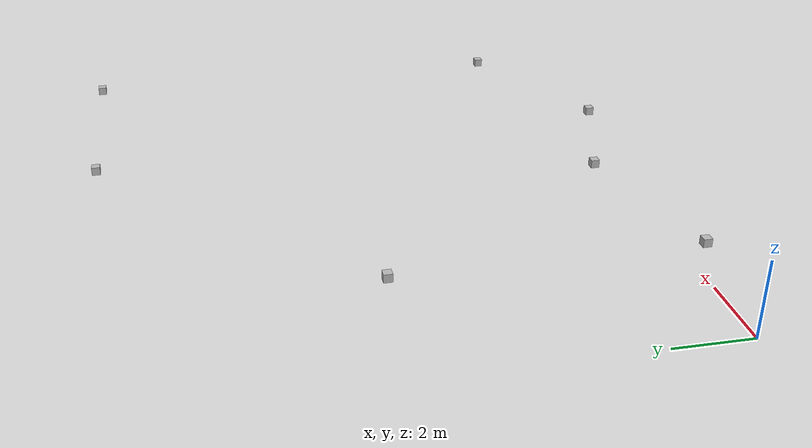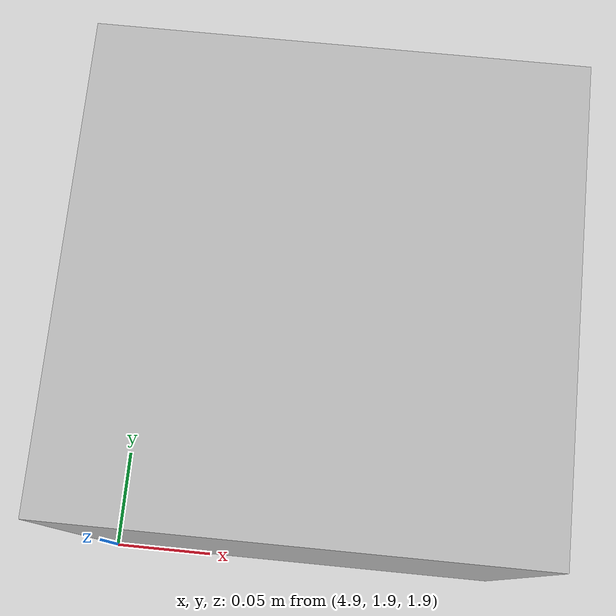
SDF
<sdf version="1.4">
 <world name="default">
  <scene><ambient>0.4 0.4 0.4 1</ambient><background>0.7 0.7 0.7 1</background><shadows>true</shadows></scene>
  <include><uri>model://sun</uri></include>
  <model name="uwb_anchor0">
   <pose>1 1 2 0 0 0</pose>
   <static>1</static>
   <link name="link">
    <visual name="visual"><geometry><box><size>0.2 0.2 0.2</size></box></geometry></visual>
   </link>
  </model>
  <model name="uwb_anchor1">
   <pose>1 8 2 0 0 0</pose>
   <static>1</static>
   <link name="link">
    <visual name="visual"><geometry><box><size>0.2 0.2 0.2</size></box></geometry></visual>
   </link>
  </model>
  <model name="uwb_anchor2">
   <pose>7 14 2 0 0 0</pose>
   <static>1</static>
   <link name="link">
    <visual name="visual"><geometry><box><size>0.2 0.2 0.2</size></box></geometry></visual>
   </link>
  </model>
  <model name="uwb_anchor3">
   <pose>12 14 2 0 0 0</pose>
   <static>1</static>
   <link name="link">
    <visual name="visual"><geometry><box><size>0.2 0.2 0.2</size></box></geometry></visual>
   </link>
  </model>
  <model name="uwb_anchor4">
   <pose>12 3 2 0 0 0</pose>
   <static>1</static>
   <link name="link">
    <visual name="visual"><geometry><box><size>0.2 0.2 0.2</size></box></geometry></visual>
   </link>
  </model>
  <model name="uwb_anchor5">
   <pose>8 1 2 0 0 0</pose>
   <static>1</static>
   <link name="link">
    <visual name="visual"><geometry><box><size>0.2 0.2 0.2</size></box></geometry></visual>
   </link>
  </model>
  <model name="uwb_anchor6">
   <pose>5 2 2 0 0 0</pose>
   <static>1</static>
   <link name="link">
    <visual name="visual"><geometry><box><size>0.2 0.2 0.2</size></box></geometry></visual>
   </link>
  </model>
  <physics type="ode">
   <real_time_update_rate>500.0</real_time_update_rate>
   <max_step_size>0.002</max_step_size>
   <real_time_factor>1</real_time_factor>
   <ode>
    <solver>
     <type>quick</type>
     <iters>150</iters>
     <precon_iters>0</precon_iters>
     <sor>1.400000</sor>
     <use_dynamic_moi_rescaling>1</use_dynamic_moi_rescaling>
    </solver>
    <constraints>
     <cfm>0.00001</cfm>
     <erp>0.2</erp>
     <contact_max_correcting_vel>2000.000000</contact_max_correcting_vel>
     <contact_surface_layer>0.01000</contact_surface_layer>
    </constraints>
   </ode>
  </physics>
 </world>
</sdf>
